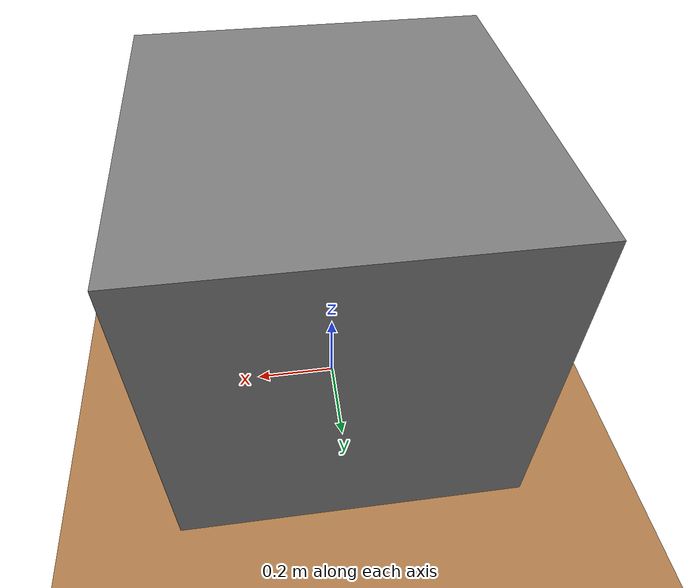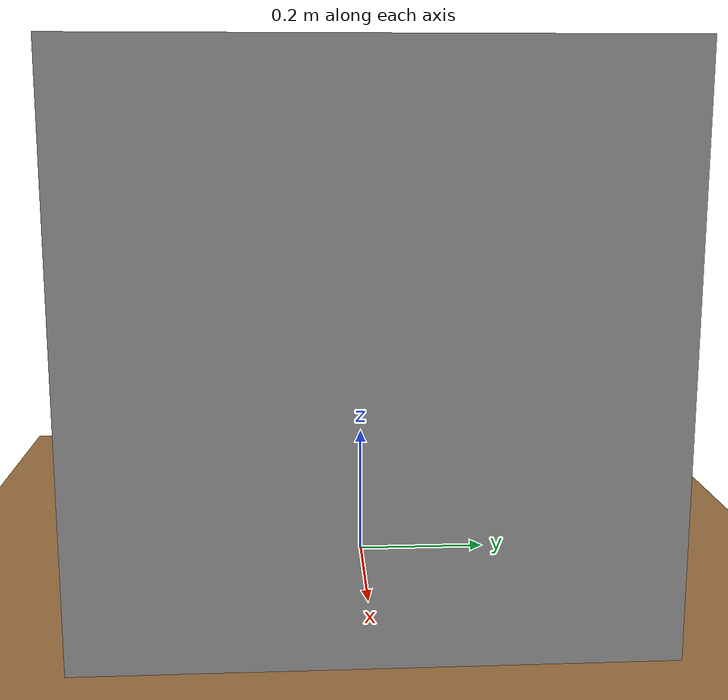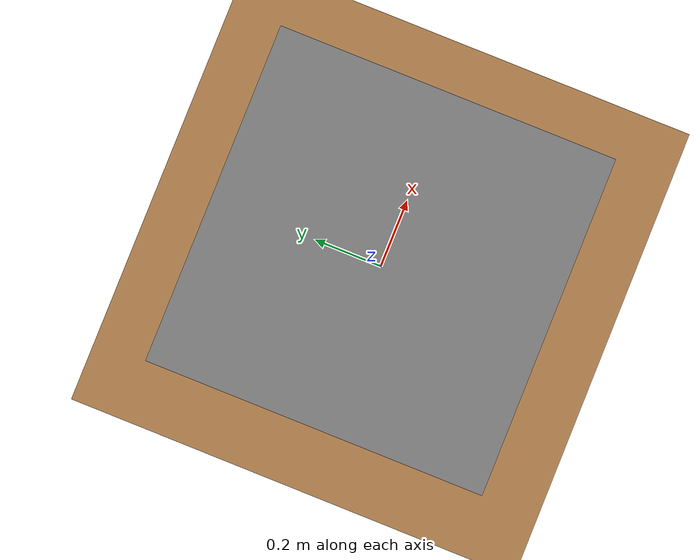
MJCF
<!-- source: https://github.com/ARISE-Initiative/robosuite/blob/master/robosuite/models/assets/arenas/table_arena.xml -->
<mujoco model="table_arena">
    <asset>
        <texture builtin="gradient" height="256" rgb1=".9 .9 1." rgb2=".2 .3 .4" type="skybox" width="256"/>
        <texture file="../textures/wood-tiles.png" type="2d" name="texplane"/>
        <material name="floorplane" reflectance="0.01" shininess="0.0" specular="0.0" texrepeat="2 2" texture="texplane" texuniform="true"/>
        <!-- ceramic table texture and material-->
        <texture file="../textures/silverRaw.png" type="cube" name="tex-ceramic"/>
        <material name="table_ceramic" reflectance="0.0" shininess="0.0" specular="0.2" texrepeat="1 1" texture="tex-ceramic" />
        <!-- steel legs -->
        <texture file="../textures/cream-plaster.png" type="cube" name="tex-steel-brushed"/>
        <material name="table_legs_metal" reflectance="0.8" shininess="0.8" texrepeat="1 1" texture="tex-steel-brushed" />
        <!-- plaster walls -->
        <texture file="../textures/cream-plaster.png" type="2d" name="tex-cream-plaster"/>
        <material name="walls_mat" reflectance="0.0" shininess="0.1" specular="0.1" texrepeat="3 3" texture="tex-cream-plaster" texuniform="true" />
        <!-- added table texture and material for domain randomization -->
        <texture name="textable" builtin="flat" height="512" width="512" rgb1="0.5 0.5 0.5" rgb2="0.5 0.5 0.5"/>
        <material name="table_mat" texture="textable" />
    </asset>
    <worldbody>
        <!-- Floor -->
        <geom condim="3" material="floorplane" name="floor" pos="0 0 0" size="1.5 1.5 .125" type="plane"/>
        <!-- Table body -->
        <body name="table" pos="0 0 0.4">
            <geom pos="0 0 0" size="0.4 0.4 0.4" type="box" group="2" name="table_collision" friction="1 0.005 0.0001"/>
            <geom pos="0 0 0" size="0.4 0.4 0.4" type="box" conaffinity="0" contype="0" group="1" name="table_visual" material="table_ceramic"/>
            <site pos="0 0 0.4" name="table_top" size="0.001 0.001 0.001" rgba="0 0 0 0"/>
            <!-- Legs (visual only) -->
            <geom pos="0 0 0" size="0.05 0.1" type="cylinder" conaffinity="0" contype="0" group="1" name="table_leg1_visual" material="table_legs_metal"/>
            <geom pos="0 0 0" size="0.05 0.1" type="cylinder" conaffinity="0" contype="0" group="1" name="table_leg2_visual" material="table_legs_metal"/>
            <geom pos="0 0 0" size="0.05 0.1" type="cylinder" conaffinity="0" contype="0" group="1" name="table_leg3_visual" material="table_legs_metal"/>
            <geom pos="0 0 0" size="0.05 0.1" type="cylinder" conaffinity="0" contype="0" group="1" name="table_leg4_visual" material="table_legs_metal"/>
        </body>

        <light name="light1" diffuse=".8 .8 .8" dir="0 -.15 -1" directional="false" pos="1 1 4.0" specular="0.3 0.3 0.3" castshadow="false"/>
        <light name="light2" diffuse=".8 .8 .8" dir="0 -.15 -1" directional="false" pos="-3. -3. 4.0" specular="0.3 0.3 0.3" castshadow="false"/>
        <camera mode="fixed" name="zeroview" pos="0 0 0" quat="0 1 0 0"/>
        <camera mode="fixed" name="frontview" pos="0 -1 0.9" quat="0.65 0.2705981, 0.2705981, 0.6532815"/>
        <camera mode="fixed" name="backview" pos="0 0.6 0.9" quat="0 0 0.2815 0.9595"/>
        <camera mode="fixed" name="sideview" pos="-1.3 -0.5 0.5" quat=" 0.6781121 0.5164697 -0.3290275 -0.4064037"/>
    </worldbody>
</mujoco>
